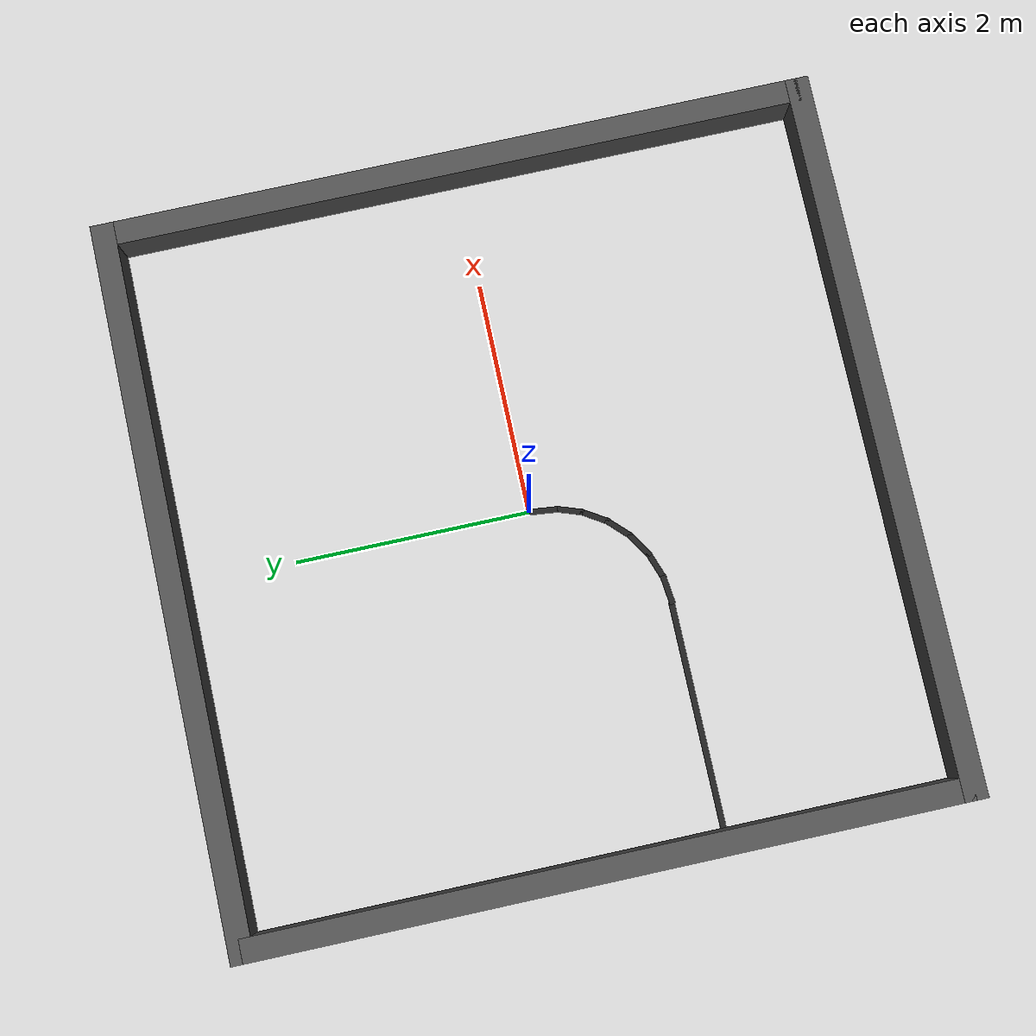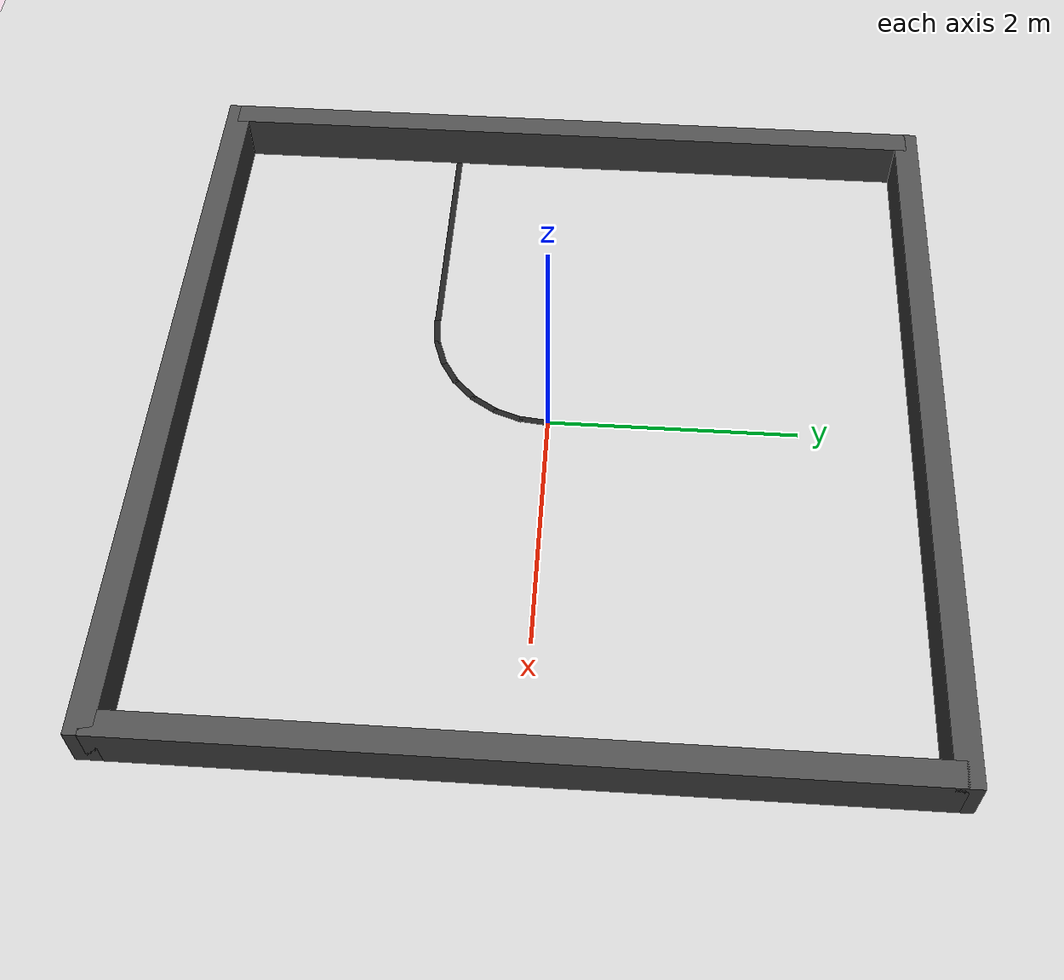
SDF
<?xml version="1.0"?>
<sdf version="1.6">
  <world name="agv_world">
    <!-- init perspective setting-->
    <gui fullscreen='0'>
      <camera name='cam'>
        <pose>-6.0 -6.0 6.0 0 0.65 0.785</pose>
        <view_controller>orbit</view_controller>
        <projection_type>perspective</projection_type>
      </camera>
    </gui>
    <include><uri>model://sun</uri></include>
    <physics type="ode">
      <real_time_update_rate>1000.0</real_time_update_rate>
    </physics>

    <model name="ground_plane">
      <static>true</static>
      <link name="link">
        <collision name="collision"><geometry><plane><normal>0 0 1</normal><size>100 100</size></plane></geometry></collision>
        <visual name="visual"><geometry><plane><normal>0 0 1</normal><size>100 100</size></plane></geometry>
          <material><ambient>0.8 0.8 0.8 1</ambient><diffuse>0.8 0.8 0.8 1</diffuse></material>
        </visual>
      </link>
    </model>

    <!-- wall setting-->
    <model name="walls">
      <static>true</static>
      <pose>0 0 0 0 0 0</pose>
      <link name="wall_north">
        <pose>0 3.0 0.2 0 0 0</pose>
        <visual name="vis">
          <geometry><box><size>6.2 0.2 0.4</size></box></geometry>
          <material><ambient>0.3 0.3 0.3 1</ambient></material>
        </visual>
        <collision name="col">
        <geometry><box><size>6.2 0.2 0.4</size></box></geometry>
        </collision>
      </link>

      <link name="wall_south">    <!-- roslaunch시, 바로 앞 왼쪽-->
        <pose>0 -3.0 0.2 0 0 0</pose>
        <visual name="vis">
          <geometry><box><size>6.2 0.2 0.4</size></box></geometry>
          <material><ambient>0.3 0.3 0.3 1</ambient></material>
        </visual>
        <collision name="col"><geometry><box><size>6.2 0.2 0.4</size></box></geometry></collision>
      </link>
      <link name="wall_east">     <!-- roslaunch시, 바로 앞 오른쪽-->
        <pose>3.0 0 0.2 0 0 0</pose>
        <visual name="vis"><geometry><box><size>0.2 6.0 0.4</size></box></geometry><material><ambient>0.3 0.3 0.3 1</ambient></material></visual>
        <collision name="col"><geometry><box><size>0.2 6.0 0.4</size></box></geometry></collision>
      </link>
      <link name="wall_west">
        <pose>-3.0 0 0.2 0 0 0</pose>
        <visual name="vis"><geometry><box><size>0.2 6.0 0.4</size></box></geometry><material><ambient>0.3 0.3 0.3 1</ambient></material></visual>
        <collision name="col"><geometry><box><size>0.2 6.0 0.4</size></box></geometry></collision>
      </link>
    </model>

    <model name="line_start">
      <static>true</static>
      <pose>-2.0 -1.0 0.001 0 0 0</pose>
      <link name="link">
        <visual name="visual">
          <geometry><box><size>2.0 0.05 0.001</size></box></geometry>
          <material><script><uri>file://media/materials/scripts/gazebo.material</uri><name>Gazebo/FlatBlack</name></script></material>
        </visual>
      </link>
    </model>

    <model name="line_end">
      <static>true</static>
      <pose>0.0 1.0 0.001 0 0 0</pose>
      <link name="link">
        <visual name="visual">
          <geometry><box><size>0.05 2.0 0.001</size></box></geometry>
          <material><script><uri>file://media/materials/scripts/gazebo.material</uri><name>Gazebo/FlatBlack</name></script></material>
        </visual>
      </link>
    </model>

    <model name="line_corner">
      <static>true</static>
      <pose>-1 -1 0.001 0 0 0</pose>

      <link name="seg_1">
        <pose>0.112 0.006 0 0 0 0.112</pose>
        <visual name="vis">
          <geometry><box><size>0.254 0.05 0.001</size></box></geometry>
          <material><script><uri>file://media/materials/scripts/gazebo.material</uri><name>Gazebo/FlatBlack</name></script></material>
        </visual>
      </link>

      <link name="seg_2">
        <pose>0.330 0.056 0 0 0 0.337</pose>
        <visual name="vis">
          <geometry><box><size>0.254 0.05 0.001</size></box></geometry>
          <material><script><uri>file://media/materials/scripts/gazebo.material</uri><name>Gazebo/FlatBlack</name></script></material>
        </visual>
      </link>

      <link name="seg_3">
        <pose>0.532 0.153 0 0 0 0.561</pose>
        <visual name="vis">
          <geometry><box><size>0.254 0.05 0.001</size></box></geometry>
          <material><script><uri>file://media/materials/scripts/gazebo.material</uri><name>Gazebo/FlatBlack</name></script></material>
        </visual>
      </link>

      <link name="seg_4">
        <pose>0.707 0.293 0 0 0 0.785</pose>
        <visual name="vis">
          <geometry><box><size>0.254 0.05 0.001</size></box></geometry>
          <material><script><uri>file://media/materials/scripts/gazebo.material</uri><name>Gazebo/FlatBlack</name></script></material>
        </visual>
      </link>

      <link name="seg_5">
        <pose>0.847 0.468 0 0 0 1.010</pose>
        <visual name="vis">
          <geometry><box><size>0.254 0.05 0.001</size></box></geometry>
          <material><script><uri>file://media/materials/scripts/gazebo.material</uri><name>Gazebo/FlatBlack</name></script></material>
        </visual>
      </link>

      <link name="seg_6">
        <pose>0.944 0.670 0 0 0 1.234</pose>
        <visual name="vis">
          <geometry><box><size>0.254 0.05 0.001</size></box></geometry>
          <material><script><uri>file://media/materials/scripts/gazebo.material</uri><name>Gazebo/FlatBlack</name></script></material>
        </visual>
      </link>

      <link name="seg_7">
        <pose>0.989 0.888 0 0 0 1.459</pose>
        <visual name="vis">
          <geometry><box><size>0.254 0.05 0.001</size></box></geometry>
          <material><script><uri>file://media/materials/scripts/gazebo.material</uri><name>Gazebo/FlatBlack</name></script></material>
        </visual>
      </link>

    </model>

  </world>
</sdf>
